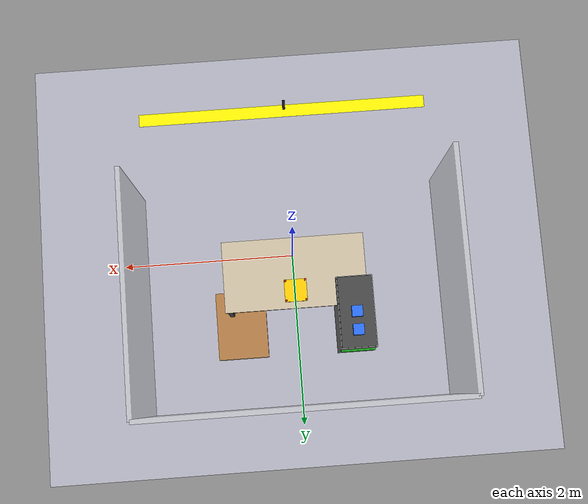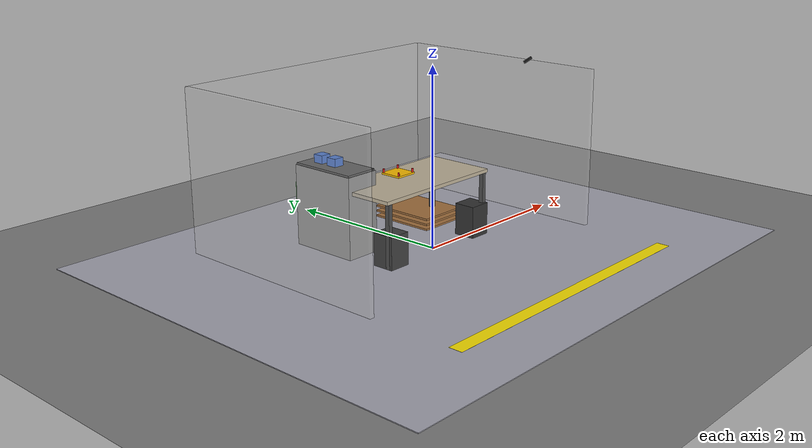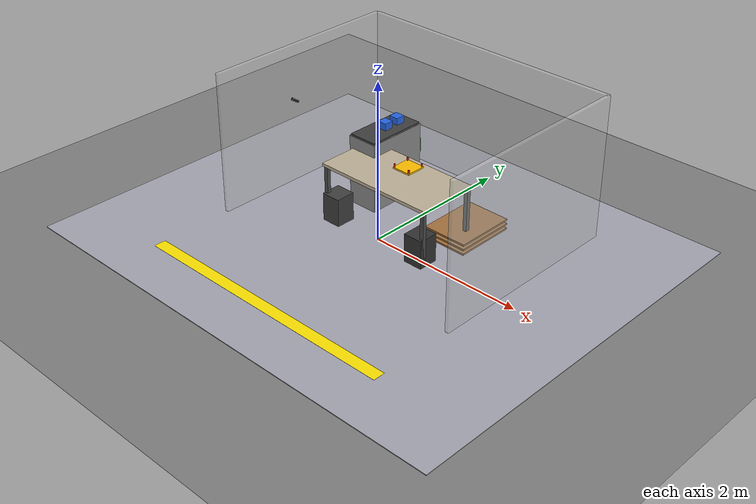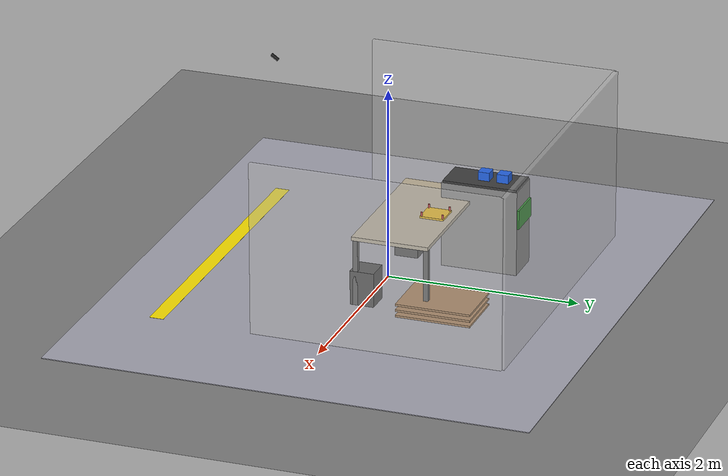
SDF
<?xml version="1.0" ?>
<sdf version="1.9">
  <world name="factory50_workcell">

    <!-- ── Physics ─────────────────────────────────────────────────────── -->
    <physics name="1ms" type="ignored">
      <max_step_size>0.001</max_step_size>
      <real_time_factor>1.0</real_time_factor>
    </physics>

    <!-- ── Plugins ─────────────────────────────────────────────────────── -->
    <plugin filename="gz-sim-physics-system"
            name="gz::sim::systems::Physics"/>
    <plugin filename="gz-sim-user-commands-system"
            name="gz::sim::systems::UserCommands"/>
    <plugin filename="gz-sim-scene-broadcaster-system"
            name="gz::sim::systems::SceneBroadcaster"/>
    <plugin filename="gz-sim-contact-system"
            name="gz::sim::systems::Contact"/>
    <plugin filename="gz-sim-sensors-system"
            name="gz::sim::systems::Sensors">
      <render_engine>ogre2</render_engine>
    </plugin>

    <!-- ── Lighting ────────────────────────────────────────────────────── -->
    <light type="directional" name="sun">
      <cast_shadows>true</cast_shadows>
      <pose>0 0 10 0 0 0</pose>
      <diffuse>0.9 0.9 0.9 1</diffuse>
      <specular>0.3 0.3 0.3 1</specular>
      <direction>-0.5 0.1 -0.9</direction>
    </light>

    <light type="point" name="workcell_light_1">
      <pose>0 0 3.5 0 0 0</pose>
      <diffuse>0.8 0.8 0.8 1</diffuse>
      <specular>0.2 0.2 0.2 1</specular>
      <attenuation>
        <range>8</range>
        <constant>0.2</constant>
        <linear>0.1</linear>
        <quadratic>0.01</quadratic>
      </attenuation>
    </light>

    <!-- ── Ground Plane ─────────────────────────────────────────────────── -->
    <model name="ground_plane">
      <static>true</static>
      <link name="link">
        <collision name="collision">
          <geometry><plane><normal>0 0 1</normal></plane></geometry>
        </collision>
        <visual name="visual">
          <geometry><plane><normal>0 0 1</normal><size>20 20</size></plane></geometry>
          <material>
            <ambient>0.4 0.4 0.4 1</ambient>
            <diffuse>0.5 0.5 0.5 1</diffuse>
          </material>
        </visual>
      </link>
    </model>

    <!-- ── Factory Floor Tiles ──────────────────────────────────────────── -->
    <model name="factory_floor">
      <static>true</static>
      <pose>0 0 -0.01 0 0 0</pose>
      <link name="link">
        <visual name="visual">
          <geometry><box><size>6 5 0.02</size></box></geometry>
          <material>
            <ambient>0.6 0.6 0.65 1</ambient>
            <diffuse>0.65 0.65 0.7 1</diffuse>
          </material>
        </visual>
        <collision name="collision">
          <geometry><box><size>6 5 0.02</size></box></geometry>
        </collision>
      </link>
    </model>

    <!-- ── Safety Zone Floor Markings ───────────────────────────────────── -->
    <!-- Yellow warning stripe around workcell perimeter -->
    <model name="safety_marking_front">
      <static>true</static>
      <pose>0 -1.8 0.001 0 0 0</pose>
      <link name="link">
        <visual name="visual">
          <geometry><box><size>3.5 0.15 0.001</size></box></geometry>
          <material>
            <ambient>0.9 0.8 0.0 1</ambient>
            <diffuse>1.0 0.9 0.0 1</diffuse>
          </material>
        </visual>
      </link>
    </model>

    <!-- ── Arm 0 Mount — UR5e (LEFT side) ───────────────────────────────── -->
    <model name="arm0_base_mount">
      <static>true</static>
      <pose>-0.65 0.0 0.0 0 0 0</pose>
      <link name="link">
        <collision name="collision">
          <geometry><box><size>0.25 0.25 0.72</size></box></geometry>
        </collision>
        <visual name="visual">
          <geometry><box><size>0.25 0.25 0.72</size></box></geometry>
          <material>
            <ambient>0.2 0.2 0.2 1</ambient>
            <diffuse>0.25 0.25 0.25 1</diffuse>
          </material>
        </visual>
      </link>
    </model>

    <!-- ── Arm 1 Mount — Franka Panda (RIGHT side) ──────────────────────── -->
    <model name="arm1_base_mount">
      <static>true</static>
      <pose>0.65 0.0 0.0 0 0 0</pose>
      <link name="link">
        <collision name="collision">
          <geometry><box><size>0.25 0.25 0.72</size></box></geometry>
        </collision>
        <visual name="visual">
          <geometry><box><size>0.25 0.25 0.72</size></box></geometry>
          <material>
            <ambient>0.15 0.15 0.15 1</ambient>
            <diffuse>0.2 0.2 0.2 1</diffuse>
          </material>
        </visual>
      </link>
    </model>

    <!-- ── Work Table (centre) ──────────────────────────────────────────── -->
    <model name="work_table">
      <static>true</static>
      <pose>0 0.3 0 0 0 0</pose>
      <link name="link">
        <!-- Table top -->
        <collision name="top_collision">
          <pose>0 0 0.72 0 0 0</pose>
          <geometry><box><size>1.6 0.8 0.04</size></box></geometry>
        </collision>
        <visual name="top_visual">
          <pose>0 0 0.72 0 0 0</pose>
          <geometry><box><size>1.6 0.8 0.04</size></box></geometry>
          <material>
            <ambient>0.7 0.65 0.55 1</ambient>
            <diffuse>0.75 0.70 0.60 1</diffuse>
          </material>
        </visual>
        <!-- Table legs -->
        <visual name="leg1"><pose>-0.75 -0.37 0.36 0 0 0</pose>
          <geometry><box><size>0.05 0.05 0.72</size></box></geometry>
          <material><ambient>0.3 0.3 0.3 1</ambient></material></visual>
        <visual name="leg2"><pose> 0.75 -0.37 0.36 0 0 0</pose>
          <geometry><box><size>0.05 0.05 0.72</size></box></geometry>
          <material><ambient>0.3 0.3 0.3 1</ambient></material></visual>
        <visual name="leg3"><pose>-0.75  0.37 0.36 0 0 0</pose>
          <geometry><box><size>0.05 0.05 0.72</size></box></geometry>
          <material><ambient>0.3 0.3 0.3 1</ambient></material></visual>
        <visual name="leg4"><pose> 0.75  0.37 0.36 0 0 0</pose>
          <geometry><box><size>0.05 0.05 0.72</size></box></geometry>
          <material><ambient>0.3 0.3 0.3 1</ambient></material></visual>
      </link>
    </model>

    <!-- ── Input Conveyor (LEFT — feeds boxes to UR5e) ──────────────────── -->
    <model name="input_conveyor">
      <static>true</static>
      <pose>-0.65 0.8 0 0 0 0</pose>
      <link name="link">
        <collision name="collision">
          <pose>0 0 0.45 0 0 0</pose>
          <geometry><box><size>0.4 0.8 0.9</size></box></geometry>
        </collision>
        <visual name="body">
          <pose>0 0 0.45 0 0 0</pose>
          <geometry><box><size>0.4 0.8 0.9</size></box></geometry>
          <material>
            <ambient>0.5 0.5 0.5 1</ambient>
            <diffuse>0.55 0.55 0.55 1</diffuse>
          </material>
        </visual>
        <!-- Conveyor belt surface -->
        <visual name="belt">
          <pose>0 0 0.91 0 0 0</pose>
          <geometry><box><size>0.38 0.78 0.02</size></box></geometry>
          <material>
            <ambient>0.2 0.2 0.2 1</ambient>
            <diffuse>0.25 0.25 0.25 1</diffuse>
          </material>
        </visual>
        <!-- Label -->
        <visual name="label_strip">
          <pose>0 0.41 0.6 0 0 0</pose>
          <geometry><box><size>0.38 0.02 0.2</size></box></geometry>
          <material><ambient>0.1 0.5 0.1 1</ambient><diffuse>0.1 0.6 0.1 1</diffuse></material>
        </visual>
      </link>
    </model>

    <!-- ── Transfer Fixture (CENTRE — handover zone) ────────────────────── -->
    <model name="transfer_fixture">
      <static>true</static>
      <pose>0 0.5 0.74 0 0 0</pose>
      <link name="link">
        <collision name="collision">
          <geometry><box><size>0.25 0.25 0.04</size></box></geometry>
        </collision>
        <visual name="platform">
          <geometry><box><size>0.25 0.25 0.04</size></box></geometry>
          <material>
            <ambient>0.8 0.6 0.0 1</ambient>
            <diffuse>1.0 0.75 0.0 1</diffuse>
          </material>
        </visual>
        <!-- Fixture corner guides -->
        <visual name="guide1"><pose>-0.11 -0.11 0.04 0 0 0</pose>
          <geometry><cylinder><radius>0.01</radius><length>0.04</length></cylinder></geometry>
          <material><ambient>0.8 0.1 0.1 1</ambient></material></visual>
        <visual name="guide2"><pose> 0.11 -0.11 0.04 0 0 0</pose>
          <geometry><cylinder><radius>0.01</radius><length>0.04</length></cylinder></geometry>
          <material><ambient>0.8 0.1 0.1 1</ambient></material></visual>
        <visual name="guide3"><pose>-0.11  0.11 0.04 0 0 0</pose>
          <geometry><cylinder><radius>0.01</radius><length>0.04</length></cylinder></geometry>
          <material><ambient>0.8 0.1 0.1 1</ambient></material></visual>
        <visual name="guide4"><pose> 0.11  0.11 0.04 0 0 0</pose>
          <geometry><cylinder><radius>0.01</radius><length>0.04</length></cylinder></geometry>
          <material><ambient>0.8 0.1 0.1 1</ambient></material></visual>
      </link>
    </model>

    <!-- ── Output Pallet (RIGHT — Franka stacks boxes here) ─────────────── -->
    <model name="output_pallet">
      <static>true</static>
      <pose>0.65 0.8 0 0 0 0</pose>
      <link name="link">
        <!-- Pallet base -->
        <collision name="collision">
          <pose>0 0 0.075 0 0 0</pose>
          <geometry><box><size>0.6 0.8 0.15</size></box></geometry>
        </collision>
        <visual name="pallet_top">
          <pose>0 0 0.14 0 0 0</pose>
          <geometry><box><size>0.58 0.78 0.02</size></box></geometry>
          <material>
            <ambient>0.6 0.4 0.2 1</ambient>
            <diffuse>0.65 0.45 0.25 1</diffuse>
          </material>
        </visual>
        <visual name="pallet_mid">
          <pose>0 0 0.08 0 0 0</pose>
          <geometry><box><size>0.58 0.78 0.02</size></box></geometry>
          <material><ambient>0.6 0.4 0.2 1</ambient><diffuse>0.65 0.45 0.25 1</diffuse></material>
        </visual>
        <visual name="pallet_bot">
          <pose>0 0 0.02 0 0 0</pose>
          <geometry><box><size>0.58 0.78 0.02</size></box></geometry>
          <material><ambient>0.6 0.4 0.2 1</ambient><diffuse>0.65 0.45 0.25 1</diffuse></material>
        </visual>
      </link>
    </model>

    <!-- ── Box 1 (on input conveyor — waiting to be picked) ─────────────── -->
    <model name="box_01">
      <pose>-0.65 0.8 0.95 0 0 0</pose>
      <link name="link">
        <inertial>
          <mass>0.5</mass>
          <inertia><ixx>0.001</ixx><iyy>0.001</iyy><izz>0.001</izz></inertia>
        </inertial>
        <collision name="collision">
          <geometry><box><size>0.12 0.12 0.12</size></box></geometry>
        </collision>
        <visual name="visual">
          <geometry><box><size>0.12 0.12 0.12</size></box></geometry>
          <material>
            <ambient>0.1 0.3 0.8 1</ambient>
            <diffuse>0.15 0.4 0.9 1</diffuse>
          </material>
        </visual>
      </link>
    </model>

    <!-- ── Box 2 (queued on conveyor) ───────────────────────────────────── -->
    <model name="box_02">
      <pose>-0.65 1.0 0.95 0 0 0</pose>
      <link name="link">
        <inertial>
          <mass>0.5</mass>
          <inertia><ixx>0.001</ixx><iyy>0.001</iyy><izz>0.001</izz></inertia>
        </inertial>
        <collision name="collision">
          <geometry><box><size>0.12 0.12 0.12</size></box></geometry>
        </collision>
        <visual name="visual">
          <geometry><box><size>0.12 0.12 0.12</size></box></geometry>
          <material>
            <ambient>0.1 0.3 0.8 1</ambient>
            <diffuse>0.15 0.4 0.9 1</diffuse>
          </material>
        </visual>
      </link>
    </model>

    <!-- ── Safety Fence (rear + sides) ─────────────────────────────────── -->
    <model name="fence_rear">
      <static>true</static>
      <pose>0 1.8 0 0 0 0</pose>
      <link name="link">
        <visual name="visual">
          <pose>0 0 0.9 0 0 0</pose>
          <geometry><box><size>3.5 0.05 1.8</size></box></geometry>
          <material>
            <ambient>0.7 0.7 0.7 0.4</ambient>
            <diffuse>0.8 0.8 0.8 0.4</diffuse>
          </material>
        </visual>
        <collision name="collision">
          <pose>0 0 0.9 0 0 0</pose>
          <geometry><box><size>3.5 0.05 1.8</size></box></geometry>
        </collision>
      </link>
    </model>

    <model name="fence_left">
      <static>true</static>
      <pose>-1.75 0.5 0 0 0 0</pose>
      <link name="link">
        <visual name="visual">
          <pose>0 0 0.9 0 0 0</pose>
          <geometry><box><size>0.05 2.6 1.8</size></box></geometry>
          <material><ambient>0.7 0.7 0.7 0.4</ambient><diffuse>0.8 0.8 0.8 0.4</diffuse></material>
        </visual>
        <collision name="collision">
          <pose>0 0 0.9 0 0 0</pose>
          <geometry><box><size>0.05 2.6 1.8</size></box></geometry>
        </collision>
      </link>
    </model>

    <model name="fence_right">
      <static>true</static>
      <pose>1.75 0.5 0 0 0 0</pose>
      <link name="link">
        <visual name="visual">
          <pose>0 0 0.9 0 0 0</pose>
          <geometry><box><size>0.05 2.6 1.8</size></box></geometry>
          <material><ambient>0.7 0.7 0.7 0.4</ambient><diffuse>0.8 0.8 0.8 0.4</diffuse></material>
        </visual>
        <collision name="collision">
          <pose>0 0 0.9 0 0 0</pose>
          <geometry><box><size>0.05 2.6 1.8</size></box></geometry>
        </collision>
      </link>
    </model>

    <!-- ── Depth Camera (for HRC human detection) ───────────────────────── -->
    <model name="workcell_camera">
      <static>true</static>
      <pose>0 -1.2 2.2 0 0.6 1.5708</pose>
      <link name="link">
        <visual name="visual">
          <geometry><box><size>0.09 0.025 0.025</size></box></geometry>
          <material><ambient>0.1 0.1 0.1 1</ambient></material>
        </visual>
        <sensor name="depth_camera" type="depth_camera">
          <update_rate>30</update_rate>
          <topic>/camera/depth/image_raw</topic>
          <camera>
            <horizontal_fov>1.204</horizontal_fov>
            <image>
              <width>640</width>
              <height>480</height>
              <format>R_FLOAT32</format>
            </image>
            <clip><near>0.1</near><far>8.0</far></clip>
          </camera>
        </sensor>
        <sensor name="color_camera" type="camera">
          <update_rate>30</update_rate>
          <topic>/camera/color/image_raw</topic>
          <camera>
            <horizontal_fov>1.204</horizontal_fov>
            <image>
              <width>640</width>
              <height>480</height>
              <format>RGB_INT8</format>
            </image>
            <clip><near>0.1</near><far>8.0</far></clip>
          </camera>
        </sensor>
      </link>
    </model>

    <!-- ── GUI Camera position ──────────────────────────────────────────── -->
    <gui fullscreen="0">
      <plugin filename="MinimalScene" name="3D View">
        <gz-gui>
          <title>3D View</title>
          <property type="bool" key="showTitleBar">false</property>
          <property type="string" key="state">docked</property>
        </gz-gui>
        <engine>ogre2</engine>
        <scene>scene</scene>
        <ambient_light>0.4 0.4 0.4</ambient_light>
        <background_color>0.18 0.18 0.22</background_color>
        <camera_pose>-3.5 -2.5 2.8 0 0.45 0.75</camera_pose>
      </plugin>
      <plugin filename="GzSceneManager" name="Scene Manager"/>
      <plugin filename="InteractiveViewControl" name="Interactive view control"/>
      <plugin filename="EntityContextMenuPlugin" name="Entity context menu"/>
      <plugin filename="TransformControl" name="Transform control"/>
      <plugin filename="Shapes" name="Shapes"/>
      <plugin filename="ComponentInspector" name="Component inspector"/>
      <plugin filename="EntityTree" name="Entity tree"/>
    </gui>

  </world>
</sdf>
